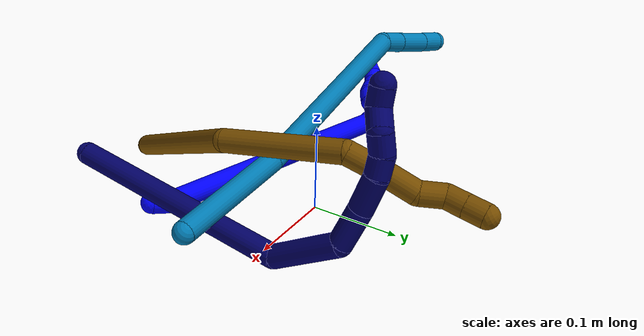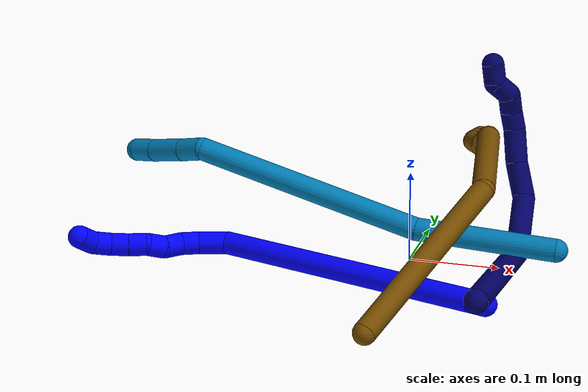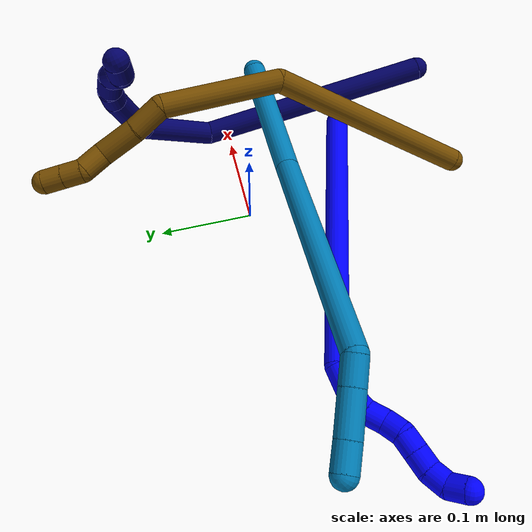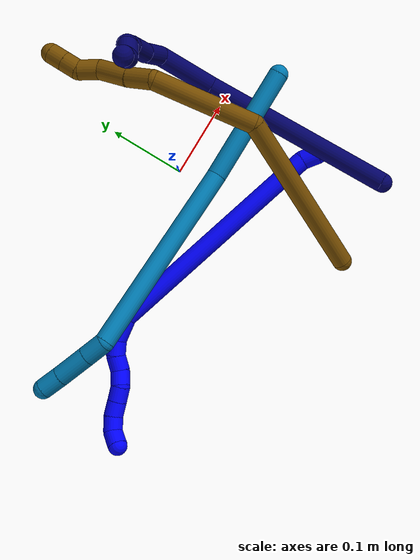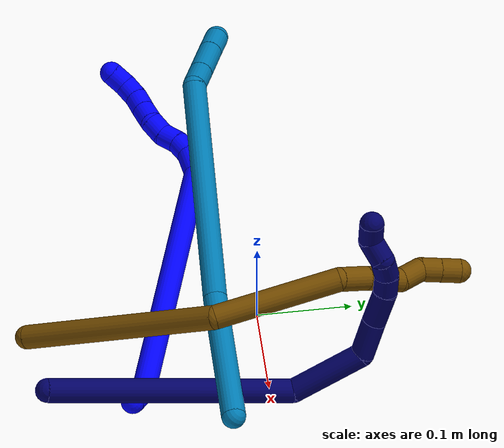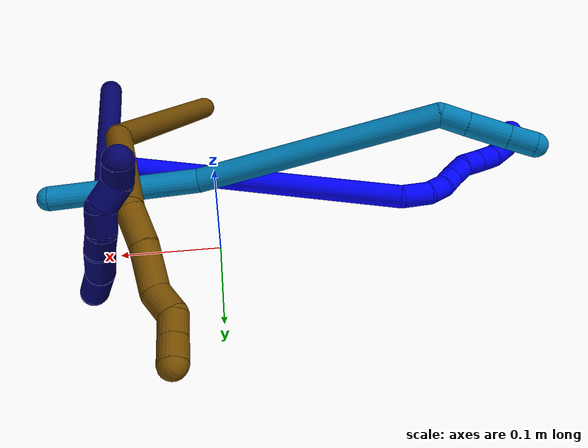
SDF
<sdf version="1.7">
 <world name="default">
  <model name="photoneo_s_sensor">
   <static>1</static>
   <pose>0 0 2 1.57079 1.57079 3.14159</pose>
   <link name="link">
    <inertial><mass>0.1</mass></inertial>
    <sensor name="sensor" type="depth">
     <update_rate>30</update_rate>
     <camera>
      <horizontal_fov>1.22</horizontal_fov>
      <image><width>1920</width><height>1200</height><format>B8G8R8</format></image>
      <clip><near>0.1</near><far>4</far></clip>
      <depth_camera><output>points</output></depth_camera>
     </camera>
     <plugin name="camera_plugin" filename="libgazebo_ros_depth_camera.so">
      <baseline>0.2</baseline>
      <alwaysOn>1</alwaysOn>
      <updateRate>0.0</updateRate>
      <cameraName>camera_ir</cameraName>
      <imageTopicName>/camera/color/image_raw</imageTopicName>
      <cameraInfoTopicName>/camera/color/camera_info</cameraInfoTopicName>
      <depthImageTopicName>/camera/depth/image_raw</depthImageTopicName>
      <depthImageCameraInfoTopicName>/camera/depth/camera_info</depthImageCameraInfoTopicName>
      <pointCloudTopicName>/camera/depth/points</pointCloudTopicName>
      <frameName>fr_optical</frameName>
      <pointCloudCutoff>0.1</pointCloudCutoff>
      <pointCloudCutoffMax>2.0</pointCloudCutoffMax>
      <distortionK1>0</distortionK1>
      <distortionK2>0</distortionK2>
      <distortionK3>0</distortionK3>
      <distortionT1>0</distortionT1>
      <distortionT2>0</distortionT2>
      <CxPrime>0</CxPrime>
      <Cx>0</Cx>
      <Cy>0</Cy>
      <focalLength>0</focalLength>
      <hackBaseline>0</hackBaseline>
     </plugin>
    </sensor>
   </link>
  </model>
  <model name="1">
   <static>0</static>
   <link name="1">
    <collision name="collision-cylinder-e_1_1_4">
     <pose>-0.007638 -0.00194 0.007285 0.260299 -0.791988 -0.109335</pose>
     <geometry><cylinder><radius>0.0125</radius><length>0.021464</length></cylinder></geometry>
     <surface>
      <friction><ode><mu>1.16</mu><mu2>1.16</mu2><slip1>0</slip1><slip2>0</slip2></ode></friction>
      <contact><ode><kp>1e+06</kp><kd>1</kd><max_vel>0</max_vel><min_depth>0.001</min_depth></ode></contact>
     </surface>
    </collision>
    <visual name="visual-cylinder-e_1_1_4">
     <pose>-0.007638 -0.00194 0.007285 0.260299 -0.791988 -0.109335</pose>
     <geometry><cylinder><radius>0.0125</radius><length>0.021464</length></cylinder></geometry>
     <material><ambient>0 0 1 1</ambient></material>
    </visual>
    <collision name="collision-cylinder-e_2_4_5">
     <pose>-0.13406 0.026539 0.105527 -0.322742 -0.891536 0.155261</pose>
     <geometry><cylinder><radius>0.0125</radius><length>0.305341</length></cylinder></geometry>
     <surface>
      <friction><ode><mu>1.16</mu><mu2>1.16</mu2><slip1>0</slip1><slip2>0</slip2></ode></friction>
      <contact><ode><kp>1e+06</kp><kd>1</kd><max_vel>0</max_vel><min_depth>0.001</min_depth></ode></contact>
     </surface>
    </collision>
    <visual name="visual-cylinder-e_2_4_5">
     <pose>-0.13406 0.026539 0.105527 -0.322742 -0.891536 0.155261</pose>
     <geometry><cylinder><radius>0.0125</radius><length>0.305341</length></cylinder></geometry>
     <material><ambient>0 0 1 1</ambient></material>
    </visual>
    <collision name="collision-cylinder-e_3_5_6">
     <pose>-0.261955 0.066151 0.205762 -0.780838 -0.609185 0.25733</pose>
     <geometry><cylinder><radius>0.0125</radius><length>0.031847</length></cylinder></geometry>
     <surface>
      <friction><ode><mu>1.16</mu><mu2>1.16</mu2><slip1>0</slip1><slip2>0</slip2></ode></friction>
      <contact><ode><kp>1e+06</kp><kd>1</kd><max_vel>0</max_vel><min_depth>0.001</min_depth></ode></contact>
     </surface>
    </collision>
    <visual name="visual-cylinder-e_3_5_6">
     <pose>-0.261955 0.066151 0.205762 -0.780838 -0.609185 0.25733</pose>
     <geometry><cylinder><radius>0.0125</radius><length>0.031847</length></cylinder></geometry>
     <material><ambient>0 0 1 1</ambient></material>
    </visual>
    <collision name="collision-cylinder-e_4_6_7">
     <pose>-0.275228 0.083756 0.219268 -1.10495 -0.416077 0.258829</pose>
     <geometry><cylinder><radius>0.0125</radius><length>0.02059</length></cylinder></geometry>
     <surface>
      <friction><ode><mu>1.16</mu><mu2>1.16</mu2><slip1>0</slip1><slip2>0</slip2></ode></friction>
      <contact><ode><kp>1e+06</kp><kd>1</kd><max_vel>0</max_vel><min_depth>0.001</min_depth></ode></contact>
     </surface>
    </collision>
    <visual name="visual-cylinder-e_4_6_7">
     <pose>-0.275228 0.083756 0.219268 -1.10495 -0.416077 0.258829</pose>
     <geometry><cylinder><radius>0.0125</radius><length>0.02059</length></cylinder></geometry>
     <material><ambient>0 0 1 1</ambient></material>
    </visual>
    <collision name="collision-cylinder-e_5_7_8">
     <pose>-0.280672 0.102002 0.226082 -1.31383 -0.125615 0.096923</pose>
     <geometry><cylinder><radius>0.0125</radius><length>0.020495</length></cylinder></geometry>
     <surface>
      <friction><ode><mu>1.16</mu><mu2>1.16</mu2><slip1>0</slip1><slip2>0</slip2></ode></friction>
      <contact><ode><kp>1e+06</kp><kd>1</kd><max_vel>0</max_vel><min_depth>0.001</min_depth></ode></contact>
     </surface>
    </collision>
    <visual name="visual-cylinder-e_5_7_8">
     <pose>-0.280672 0.102002 0.226082 -1.31383 -0.125615 0.096923</pose>
     <geometry><cylinder><radius>0.0125</radius><length>0.020495</length></cylinder></geometry>
     <material><ambient>0 0 1 1</ambient></material>
    </visual>
    <collision name="collision-cylinder-e_6_8_9">
     <pose>-0.286473 0.120682 0.229949 -1.42674 -0.467836 0.406719</pose>
     <geometry><cylinder><radius>0.0125</radius><length>0.020031</length></cylinder></geometry>
     <surface>
      <friction><ode><mu>1.16</mu><mu2>1.16</mu2><slip1>0</slip1><slip2>0</slip2></ode></friction>
      <contact><ode><kp>1e+06</kp><kd>1</kd><max_vel>0</max_vel><min_depth>0.001</min_depth></ode></contact>
     </surface>
    </collision>
    <visual name="visual-cylinder-e_6_8_9">
     <pose>-0.286473 0.120682 0.229949 -1.42674 -0.467836 0.406719</pose>
     <geometry><cylinder><radius>0.0125</radius><length>0.020031</length></cylinder></geometry>
     <material><ambient>0 0 1 1</ambient></material>
    </visual>
    <collision name="collision-cylinder-e_7_9_10">
     <pose>-0.29587 0.13672 0.236197 -0.966505 -0.509369 0.271545</pose>
     <geometry><cylinder><radius>0.0125</radius><length>0.02002</length></cylinder></geometry>
     <surface>
      <friction><ode><mu>1.16</mu><mu2>1.16</mu2><slip1>0</slip1><slip2>0</slip2></ode></friction>
      <contact><ode><kp>1e+06</kp><kd>1</kd><max_vel>0</max_vel><min_depth>0.001</min_depth></ode></contact>
     </surface>
    </collision>
    <visual name="visual-cylinder-e_7_9_10">
     <pose>-0.29587 0.13672 0.236197 -0.966505 -0.509369 0.271545</pose>
     <geometry><cylinder><radius>0.0125</radius><length>0.02002</length></cylinder></geometry>
     <material><ambient>0 0 1 1</ambient></material>
    </visual>
    <collision name="collision-cylinder-e_8_10_11">
     <pose>-0.306077 0.151041 0.245726 -1.00143 -0.561567 0.313065</pose>
     <geometry><cylinder><radius>0.0125</radius><length>0.020002</length></cylinder></geometry>
     <surface>
      <friction><ode><mu>1.16</mu><mu2>1.16</mu2><slip1>0</slip1><slip2>0</slip2></ode></friction>
      <contact><ode><kp>1e+06</kp><kd>1</kd><max_vel>0</max_vel><min_depth>0.001</min_depth></ode></contact>
     </surface>
    </collision>
    <visual name="visual-cylinder-e_8_10_11">
     <pose>-0.306077 0.151041 0.245726 -1.00143 -0.561567 0.313065</pose>
     <geometry><cylinder><radius>0.0125</radius><length>0.020002</length></cylinder></geometry>
     <material><ambient>0 0 1 1</ambient></material>
    </visual>
    <collision name="collision-cylinder-e_9_11_12">
     <pose>-0.315821 0.166876 0.252554 -1.31637 -0.456584 0.355501</pose>
     <geometry><cylinder><radius>0.0125</radius><length>0.020044</length></cylinder></geometry>
     <surface>
      <friction><ode><mu>1.16</mu><mu2>1.16</mu2><slip1>0</slip1><slip2>0</slip2></ode></friction>
      <contact><ode><kp>1e+06</kp><kd>1</kd><max_vel>0</max_vel><min_depth>0.001</min_depth></ode></contact>
     </surface>
    </collision>
    <visual name="visual-cylinder-e_9_11_12">
     <pose>-0.315821 0.166876 0.252554 -1.31637 -0.456584 0.355501</pose>
     <geometry><cylinder><radius>0.0125</radius><length>0.020044</length></cylinder></geometry>
     <material><ambient>0 0 1 1</ambient></material>
    </visual>
    <collision name="collision-cylinder-e_10_12_2">
     <pose>-0.323505 0.184671 0.251918 -1.87963 -0.329742 0.447817</pose>
     <geometry><cylinder><radius>0.0125</radius><length>0.020167</length></cylinder></geometry>
     <surface>
      <friction><ode><mu>1.16</mu><mu2>1.16</mu2><slip1>0</slip1><slip2>0</slip2></ode></friction>
      <contact><ode><kp>1e+06</kp><kd>1</kd><max_vel>0</max_vel><min_depth>0.001</min_depth></ode></contact>
     </surface>
    </collision>
    <visual name="visual-cylinder-e_10_12_2">
     <pose>-0.323505 0.184671 0.251918 -1.87963 -0.329742 0.447817</pose>
     <geometry><cylinder><radius>0.0125</radius><length>0.020167</length></cylinder></geometry>
     <material><ambient>0 0 1 1</ambient></material>
    </visual>
    <collision name="collision-sphere-2">
     <pose>-0.32677 0.19376 0.249018 0 -0 0</pose>
     <geometry><sphere><radius>0.0125</radius></sphere></geometry>
     <surface>
      <friction><ode><mu>1.16</mu><mu2>1.16</mu2><slip1>0</slip1><slip2>0</slip2></ode></friction>
      <contact><ode><kp>1e+06</kp><kd>1</kd><max_vel>0</max_vel><min_depth>0.001</min_depth></ode></contact>
     </surface>
    </collision>
    <visual name="visual-sphere-2">
     <pose>-0.32677 0.19376 0.249018 0 -0 0</pose>
     <geometry><sphere><radius>0.0125</radius></sphere></geometry>
     <material><ambient>0 0 1 1</ambient></material>
    </visual>
    <collision name="collision-sphere-12">
     <pose>-0.32024 0.175582 0.254818 0 -0 0</pose>
     <geometry><sphere><radius>0.0125</radius></sphere></geometry>
     <surface>
      <friction><ode><mu>1.16</mu><mu2>1.16</mu2><slip1>0</slip1><slip2>0</slip2></ode></friction>
      <contact><ode><kp>1e+06</kp><kd>1</kd><max_vel>0</max_vel><min_depth>0.001</min_depth></ode></contact>
     </surface>
    </collision>
    <visual name="visual-sphere-12">
     <pose>-0.32024 0.175582 0.254818 0 -0 0</pose>
     <geometry><sphere><radius>0.0125</radius></sphere></geometry>
     <material><ambient>0 0 1 1</ambient></material>
    </visual>
    <collision name="collision-sphere-11">
     <pose>-0.311403 0.15817 0.25029 0 -0 0</pose>
     <geometry><sphere><radius>0.0125</radius></sphere></geometry>
     <surface>
      <friction><ode><mu>1.16</mu><mu2>1.16</mu2><slip1>0</slip1><slip2>0</slip2></ode></friction>
      <contact><ode><kp>1e+06</kp><kd>1</kd><max_vel>0</max_vel><min_depth>0.001</min_depth></ode></contact>
     </surface>
    </collision>
    <visual name="visual-sphere-11">
     <pose>-0.311403 0.15817 0.25029 0 -0 0</pose>
     <geometry><sphere><radius>0.0125</radius></sphere></geometry>
     <material><ambient>0 0 1 1</ambient></material>
    </visual>
    <collision name="collision-sphere-10">
     <pose>-0.300752 0.143911 0.241163 0 -0 0</pose>
     <geometry><sphere><radius>0.0125</radius></sphere></geometry>
     <surface>
      <friction><ode><mu>1.16</mu><mu2>1.16</mu2><slip1>0</slip1><slip2>0</slip2></ode></friction>
      <contact><ode><kp>1e+06</kp><kd>1</kd><max_vel>0</max_vel><min_depth>0.001</min_depth></ode></contact>
     </surface>
    </collision>
    <visual name="visual-sphere-10">
     <pose>-0.300752 0.143911 0.241163 0 -0 0</pose>
     <geometry><sphere><radius>0.0125</radius></sphere></geometry>
     <material><ambient>0 0 1 1</ambient></material>
    </visual>
    <collision name="collision-sphere-9">
     <pose>-0.290989 0.129528 0.231232 0 -0 0</pose>
     <geometry><sphere><radius>0.0125</radius></sphere></geometry>
     <surface>
      <friction><ode><mu>1.16</mu><mu2>1.16</mu2><slip1>0</slip1><slip2>0</slip2></ode></friction>
      <contact><ode><kp>1e+06</kp><kd>1</kd><max_vel>0</max_vel><min_depth>0.001</min_depth></ode></contact>
     </surface>
    </collision>
    <visual name="visual-sphere-9">
     <pose>-0.290989 0.129528 0.231232 0 -0 0</pose>
     <geometry><sphere><radius>0.0125</radius></sphere></geometry>
     <material><ambient>0 0 1 1</ambient></material>
    </visual>
    <collision name="collision-sphere-4">
     <pose>-0.015277 -0.00388 0.014569 0 -0 0</pose>
     <geometry><sphere><radius>0.0125</radius></sphere></geometry>
     <surface>
      <friction><ode><mu>1.16</mu><mu2>1.16</mu2><slip1>0</slip1><slip2>0</slip2></ode></friction>
      <contact><ode><kp>1e+06</kp><kd>1</kd><max_vel>0</max_vel><min_depth>0.001</min_depth></ode></contact>
     </surface>
    </collision>
    <visual name="visual-sphere-4">
     <pose>-0.015277 -0.00388 0.014569 0 -0 0</pose>
     <geometry><sphere><radius>0.0125</radius></sphere></geometry>
     <material><ambient>0 0 1 1</ambient></material>
    </visual>
    <collision name="collision-sphere-1">
     <geometry><sphere><radius>0.0125</radius></sphere></geometry>
     <surface>
      <friction><ode><mu>1.16</mu><mu2>1.16</mu2><slip1>0</slip1><slip2>0</slip2></ode></friction>
      <contact><ode><kp>1e+06</kp><kd>1</kd><max_vel>0</max_vel><min_depth>0.001</min_depth></ode></contact>
     </surface>
    </collision>
    <visual name="visual-sphere-1">
     <geometry><sphere><radius>0.0125</radius></sphere></geometry>
     <material><ambient>0 0 1 1</ambient></material>
    </visual>
    <collision name="collision-sphere-8">
     <pose>-0.281956 0.111835 0.228665 0 -0 0</pose>
     <geometry><sphere><radius>0.0125</radius></sphere></geometry>
     <surface>
      <friction><ode><mu>1.16</mu><mu2>1.16</mu2><slip1>0</slip1><slip2>0</slip2></ode></friction>
      <contact><ode><kp>1e+06</kp><kd>1</kd><max_vel>0</max_vel><min_depth>0.001</min_depth></ode></contact>
     </surface>
    </collision>
    <visual name="visual-sphere-8">
     <pose>-0.281956 0.111835 0.228665 0 -0 0</pose>
     <geometry><sphere><radius>0.0125</radius></sphere></geometry>
     <material><ambient>0 0 1 1</ambient></material>
    </visual>
    <collision name="collision-sphere-5">
     <pose>-0.252844 0.056959 0.196486 0 -0 0</pose>
     <geometry><sphere><radius>0.0125</radius></sphere></geometry>
     <surface>
      <friction><ode><mu>1.16</mu><mu2>1.16</mu2><slip1>0</slip1><slip2>0</slip2></ode></friction>
      <contact><ode><kp>1e+06</kp><kd>1</kd><max_vel>0</max_vel><min_depth>0.001</min_depth></ode></contact>
     </surface>
    </collision>
    <visual name="visual-sphere-5">
     <pose>-0.252844 0.056959 0.196486 0 -0 0</pose>
     <geometry><sphere><radius>0.0125</radius></sphere></geometry>
     <material><ambient>0 0 1 1</ambient></material>
    </visual>
    <collision name="collision-sphere-6">
     <pose>-0.271067 0.075343 0.215038 0 -0 0</pose>
     <geometry><sphere><radius>0.0125</radius></sphere></geometry>
     <surface>
      <friction><ode><mu>1.16</mu><mu2>1.16</mu2><slip1>0</slip1><slip2>0</slip2></ode></friction>
      <contact><ode><kp>1e+06</kp><kd>1</kd><max_vel>0</max_vel><min_depth>0.001</min_depth></ode></contact>
     </surface>
    </collision>
    <visual name="visual-sphere-6">
     <pose>-0.271067 0.075343 0.215038 0 -0 0</pose>
     <geometry><sphere><radius>0.0125</radius></sphere></geometry>
     <material><ambient>0 0 1 1</ambient></material>
    </visual>
    <collision name="collision-sphere-7">
     <pose>-0.279389 0.092169 0.223498 0 -0 0</pose>
     <geometry><sphere><radius>0.0125</radius></sphere></geometry>
     <surface>
      <friction><ode><mu>1.16</mu><mu2>1.16</mu2><slip1>0</slip1><slip2>0</slip2></ode></friction>
      <contact><ode><kp>1e+06</kp><kd>1</kd><max_vel>0</max_vel><min_depth>0.001</min_depth></ode></contact>
     </surface>
    </collision>
    <visual name="visual-sphere-7">
     <pose>-0.279389 0.092169 0.223498 0 -0 0</pose>
     <geometry><sphere><radius>0.0125</radius></sphere></geometry>
     <material><ambient>0 0 1 1</ambient></material>
    </visual>
    <inertial>
     <pose>-0.182996 0.058457 0.144943 0 -0 0</pose>
     <mass>0.5</mass>
     <inertia>
      <ixx>0.001703</ixx>
      <ixy>0</ixy>
      <ixz>0</ixz>
      <iyy>0.002584</iyy>
      <iyz>0</iyz>
      <izz>0.001396</izz>
     </inertia>
    </inertial>
   </link>
   <pose>0.112448 -0.141437 0.01465 2.97616 0.628535 -0.589363</pose>
  </model>
  <model name="7">
   <static>0</static>
   <link name="7">
    <collision name="collision-cylinder-e_1_1_4">
     <pose>0.011906 0.125982 0.011617 -1.47885 0.093828 -0.085585</pose>
     <geometry><cylinder><radius>0.0125</radius><length>0.254151</length></cylinder></geometry>
     <surface>
      <friction><ode><mu>1.16</mu><mu2>1.16</mu2><slip1>0</slip1><slip2>0</slip2></ode></friction>
      <contact><ode><kp>1e+06</kp><kd>1</kd><max_vel>0</max_vel><min_depth>0.001</min_depth></ode></contact>
     </surface>
    </collision>
    <visual name="visual-cylinder-e_1_1_4">
     <pose>0.011906 0.125982 0.011617 -1.47885 0.093828 -0.085585</pose>
     <geometry><cylinder><radius>0.0125</radius><length>0.254151</length></cylinder></geometry>
     <material><ambient>0.003922 0 0.403922 1</ambient></material>
    </visual>
    <collision name="collision-cylinder-e_2_4_5">
     <pose>0.010397 0.283138 0.045274 -0.955364 -0.337899 0.176146</pose>
     <geometry><cylinder><radius>0.0125</radius><length>0.080933</length></cylinder></geometry>
     <surface>
      <friction><ode><mu>1.16</mu><mu2>1.16</mu2><slip1>0</slip1><slip2>0</slip2></ode></friction>
      <contact><ode><kp>1e+06</kp><kd>1</kd><max_vel>0</max_vel><min_depth>0.001</min_depth></ode></contact>
     </surface>
    </collision>
    <visual name="visual-cylinder-e_2_4_5">
     <pose>0.010397 0.283138 0.045274 -0.955364 -0.337899 0.176146</pose>
     <geometry><cylinder><radius>0.0125</radius><length>0.080933</length></cylinder></geometry>
     <material><ambient>0.003922 0 0.403922 1</ambient></material>
    </visual>
    <collision name="collision-cylinder-e_3_5_6">
     <pose>-0.018185 0.31817 0.080215 -0.290677 -0.84477 0.131379</pose>
     <geometry><cylinder><radius>0.0125</radius><length>0.040563</length></cylinder></geometry>
     <surface>
      <friction><ode><mu>1.16</mu><mu2>1.16</mu2><slip1>0</slip1><slip2>0</slip2></ode></friction>
      <contact><ode><kp>1e+06</kp><kd>1</kd><max_vel>0</max_vel><min_depth>0.001</min_depth></ode></contact>
     </surface>
    </collision>
    <visual name="visual-cylinder-e_3_5_6">
     <pose>-0.018185 0.31817 0.080215 -0.290677 -0.84477 0.131379</pose>
     <geometry><cylinder><radius>0.0125</radius><length>0.040563</length></cylinder></geometry>
     <material><ambient>0.003922 0 0.403922 1</ambient></material>
    </visual>
    <collision name="collision-cylinder-e_4_6_7">
     <pose>-0.045895 0.32463 0.107158 -0.183122 -0.720682 0.069165</pose>
     <geometry><cylinder><radius>0.0125</radius><length>0.038016</length></cylinder></geometry>
     <surface>
      <friction><ode><mu>1.16</mu><mu2>1.16</mu2><slip1>0</slip1><slip2>0</slip2></ode></friction>
      <contact><ode><kp>1e+06</kp><kd>1</kd><max_vel>0</max_vel><min_depth>0.001</min_depth></ode></contact>
     </surface>
    </collision>
    <visual name="visual-cylinder-e_4_6_7">
     <pose>-0.045895 0.32463 0.107158 -0.183122 -0.720682 0.069165</pose>
     <geometry><cylinder><radius>0.0125</radius><length>0.038016</length></cylinder></geometry>
     <material><ambient>0.003922 0 0.403922 1</ambient></material>
    </visual>
    <collision name="collision-cylinder-e_5_7_8">
     <pose>-0.066157 0.326561 0.12817 0.095819 -0.834077 -0.042476</pose>
     <geometry><cylinder><radius>0.0125</radius><length>0.020841</length></cylinder></geometry>
     <surface>
      <friction><ode><mu>1.16</mu><mu2>1.16</mu2><slip1>0</slip1><slip2>0</slip2></ode></friction>
      <contact><ode><kp>1e+06</kp><kd>1</kd><max_vel>0</max_vel><min_depth>0.001</min_depth></ode></contact>
     </surface>
    </collision>
    <visual name="visual-cylinder-e_5_7_8">
     <pose>-0.066157 0.326561 0.12817 0.095819 -0.834077 -0.042476</pose>
     <geometry><cylinder><radius>0.0125</radius><length>0.020841</length></cylinder></geometry>
     <material><ambient>0.003922 0 0.403922 1</ambient></material>
    </visual>
    <collision name="collision-cylinder-e_6_8_9">
     <pose>-0.080548 0.321916 0.142175 0.514304 -0.690227 -0.188519</pose>
     <geometry><cylinder><radius>0.0125</radius><length>0.02096</length></cylinder></geometry>
     <surface>
      <friction><ode><mu>1.16</mu><mu2>1.16</mu2><slip1>0</slip1><slip2>0</slip2></ode></friction>
      <contact><ode><kp>1e+06</kp><kd>1</kd><max_vel>0</max_vel><min_depth>0.001</min_depth></ode></contact>
     </surface>
    </collision>
    <visual name="visual-cylinder-e_6_8_9">
     <pose>-0.080548 0.321916 0.142175 0.514304 -0.690227 -0.188519</pose>
     <geometry><cylinder><radius>0.0125</radius><length>0.02096</length></cylinder></geometry>
     <material><ambient>0.003922 0 0.403922 1</ambient></material>
    </visual>
    <collision name="collision-cylinder-e_7_9_10">
     <pose>-0.09748 0.312561 0.150055 1.41516 -1.08286 -0.950167</pose>
     <geometry><cylinder><radius>0.0125</radius><length>0.023229</length></cylinder></geometry>
     <surface>
      <friction><ode><mu>1.16</mu><mu2>1.16</mu2><slip1>0</slip1><slip2>0</slip2></ode></friction>
      <contact><ode><kp>1e+06</kp><kd>1</kd><max_vel>0</max_vel><min_depth>0.001</min_depth></ode></contact>
     </surface>
    </collision>
    <visual name="visual-cylinder-e_7_9_10">
     <pose>-0.09748 0.312561 0.150055 1.41516 -1.08286 -0.950167</pose>
     <geometry><cylinder><radius>0.0125</radius><length>0.023229</length></cylinder></geometry>
     <material><ambient>0.003922 0 0.403922 1</ambient></material>
    </visual>
    <collision name="collision-cylinder-e_8_10_2">
     <pose>-0.115074 0.306021 0.158537 0.150954 -0.759405 -0.060337</pose>
     <geometry><cylinder><radius>0.0125</radius><length>0.021306</length></cylinder></geometry>
     <surface>
      <friction><ode><mu>1.16</mu><mu2>1.16</mu2><slip1>0</slip1><slip2>0</slip2></ode></friction>
      <contact><ode><kp>1e+06</kp><kd>1</kd><max_vel>0</max_vel><min_depth>0.001</min_depth></ode></contact>
     </surface>
    </collision>
    <visual name="visual-cylinder-e_8_10_2">
     <pose>-0.115074 0.306021 0.158537 0.150954 -0.759405 -0.060337</pose>
     <geometry><cylinder><radius>0.0125</radius><length>0.021306</length></cylinder></geometry>
     <material><ambient>0.003922 0 0.403922 1</ambient></material>
    </visual>
    <collision name="collision-sphere-2">
     <pose>-0.122408 0.304859 0.166175 0 -0 0</pose>
     <geometry><sphere><radius>0.0125</radius></sphere></geometry>
     <surface>
      <friction><ode><mu>1.16</mu><mu2>1.16</mu2><slip1>0</slip1><slip2>0</slip2></ode></friction>
      <contact><ode><kp>1e+06</kp><kd>1</kd><max_vel>0</max_vel><min_depth>0.001</min_depth></ode></contact>
     </surface>
    </collision>
    <visual name="visual-sphere-2">
     <pose>-0.122408 0.304859 0.166175 0 -0 0</pose>
     <geometry><sphere><radius>0.0125</radius></sphere></geometry>
     <material><ambient>0.003922 0 0.403922 1</ambient></material>
    </visual>
    <collision name="collision-sphere-10">
     <pose>-0.107739 0.307182 0.150899 0 -0 0</pose>
     <geometry><sphere><radius>0.0125</radius></sphere></geometry>
     <surface>
      <friction><ode><mu>1.16</mu><mu2>1.16</mu2><slip1>0</slip1><slip2>0</slip2></ode></friction>
      <contact><ode><kp>1e+06</kp><kd>1</kd><max_vel>0</max_vel><min_depth>0.001</min_depth></ode></contact>
     </surface>
    </collision>
    <visual name="visual-sphere-10">
     <pose>-0.107739 0.307182 0.150899 0 -0 0</pose>
     <geometry><sphere><radius>0.0125</radius></sphere></geometry>
     <material><ambient>0.003922 0 0.403922 1</ambient></material>
    </visual>
    <collision name="collision-sphere-9">
     <pose>-0.087221 0.317941 0.149211 0 -0 0</pose>
     <geometry><sphere><radius>0.0125</radius></sphere></geometry>
     <surface>
      <friction><ode><mu>1.16</mu><mu2>1.16</mu2><slip1>0</slip1><slip2>0</slip2></ode></friction>
      <contact><ode><kp>1e+06</kp><kd>1</kd><max_vel>0</max_vel><min_depth>0.001</min_depth></ode></contact>
     </surface>
    </collision>
    <visual name="visual-sphere-9">
     <pose>-0.087221 0.317941 0.149211 0 -0 0</pose>
     <geometry><sphere><radius>0.0125</radius></sphere></geometry>
     <material><ambient>0.003922 0 0.403922 1</ambient></material>
    </visual>
    <collision name="collision-sphere-4">
     <pose>0.023812 0.251964 0.023233 0 -0 0</pose>
     <geometry><sphere><radius>0.0125</radius></sphere></geometry>
     <surface>
      <friction><ode><mu>1.16</mu><mu2>1.16</mu2><slip1>0</slip1><slip2>0</slip2></ode></friction>
      <contact><ode><kp>1e+06</kp><kd>1</kd><max_vel>0</max_vel><min_depth>0.001</min_depth></ode></contact>
     </surface>
    </collision>
    <visual name="visual-sphere-4">
     <pose>0.023812 0.251964 0.023233 0 -0 0</pose>
     <geometry><sphere><radius>0.0125</radius></sphere></geometry>
     <material><ambient>0.003922 0 0.403922 1</ambient></material>
    </visual>
    <collision name="collision-sphere-1">
     <geometry><sphere><radius>0.0125</radius></sphere></geometry>
     <surface>
      <friction><ode><mu>1.16</mu><mu2>1.16</mu2><slip1>0</slip1><slip2>0</slip2></ode></friction>
      <contact><ode><kp>1e+06</kp><kd>1</kd><max_vel>0</max_vel><min_depth>0.001</min_depth></ode></contact>
     </surface>
    </collision>
    <visual name="visual-sphere-1">
     <geometry><sphere><radius>0.0125</radius></sphere></geometry>
     <material><ambient>0.003922 0 0.403922 1</ambient></material>
    </visual>
    <collision name="collision-sphere-8">
     <pose>-0.073875 0.325891 0.135139 0 -0 0</pose>
     <geometry><sphere><radius>0.0125</radius></sphere></geometry>
     <surface>
      <friction><ode><mu>1.16</mu><mu2>1.16</mu2><slip1>0</slip1><slip2>0</slip2></ode></friction>
      <contact><ode><kp>1e+06</kp><kd>1</kd><max_vel>0</max_vel><min_depth>0.001</min_depth></ode></contact>
     </surface>
    </collision>
    <visual name="visual-sphere-8">
     <pose>-0.073875 0.325891 0.135139 0 -0 0</pose>
     <geometry><sphere><radius>0.0125</radius></sphere></geometry>
     <material><ambient>0.003922 0 0.403922 1</ambient></material>
    </visual>
    <collision name="collision-sphere-5">
     <pose>-0.003018 0.314311 0.067315 0 -0 0</pose>
     <geometry><sphere><radius>0.0125</radius></sphere></geometry>
     <surface>
      <friction><ode><mu>1.16</mu><mu2>1.16</mu2><slip1>0</slip1><slip2>0</slip2></ode></friction>
      <contact><ode><kp>1e+06</kp><kd>1</kd><max_vel>0</max_vel><min_depth>0.001</min_depth></ode></contact>
     </surface>
    </collision>
    <visual name="visual-sphere-5">
     <pose>-0.003018 0.314311 0.067315 0 -0 0</pose>
     <geometry><sphere><radius>0.0125</radius></sphere></geometry>
     <material><ambient>0.003922 0 0.403922 1</ambient></material>
    </visual>
    <collision name="collision-sphere-6">
     <pose>-0.033352 0.322029 0.093115 0 -0 0</pose>
     <geometry><sphere><radius>0.0125</radius></sphere></geometry>
     <surface>
      <friction><ode><mu>1.16</mu><mu2>1.16</mu2><slip1>0</slip1><slip2>0</slip2></ode></friction>
      <contact><ode><kp>1e+06</kp><kd>1</kd><max_vel>0</max_vel><min_depth>0.001</min_depth></ode></contact>
     </surface>
    </collision>
    <visual name="visual-sphere-6">
     <pose>-0.033352 0.322029 0.093115 0 -0 0</pose>
     <geometry><sphere><radius>0.0125</radius></sphere></geometry>
     <material><ambient>0.003922 0 0.403922 1</ambient></material>
    </visual>
    <collision name="collision-sphere-7">
     <pose>-0.058439 0.327231 0.121201 0 -0 0</pose>
     <geometry><sphere><radius>0.0125</radius></sphere></geometry>
     <surface>
      <friction><ode><mu>1.16</mu><mu2>1.16</mu2><slip1>0</slip1><slip2>0</slip2></ode></friction>
      <contact><ode><kp>1e+06</kp><kd>1</kd><max_vel>0</max_vel><min_depth>0.001</min_depth></ode></contact>
     </surface>
    </collision>
    <visual name="visual-sphere-7">
     <pose>-0.058439 0.327231 0.121201 0 -0 0</pose>
     <geometry><sphere><radius>0.0125</radius></sphere></geometry>
     <material><ambient>0.003922 0 0.403922 1</ambient></material>
    </visual>
    <inertial>
     <pose>-0.012797 0.21503 0.052917 0 -0 0</pose>
     <mass>0.5</mass>
     <inertia>
      <ixx>0.001305</ixx>
      <ixy>0</ixy>
      <ixz>0</ixz>
      <iyy>0.0001</iyy>
      <iyz>0</iyz>
      <izz>-0.001489</izz>
     </inertia>
    </inertial>
   </link>
   <pose>0.119141 -0.227794 0.053181 -0.22757 0.60725 0.013335</pose>
  </model>
  <model name="9">
   <static>0</static>
   <link name="9">
    <collision name="collision-cylinder-e_1_1_4">
     <pose>-0.074371 -0.014388 -0.000593 1.61199 -1.37954 -1.42014</pose>
     <geometry><cylinder><radius>0.0125</radius><length>0.151504</length></cylinder></geometry>
     <surface>
      <friction><ode><mu>1.16</mu><mu2>1.16</mu2><slip1>0</slip1><slip2>0</slip2></ode></friction>
      <contact><ode><kp>1e+06</kp><kd>1</kd><max_vel>0</max_vel><min_depth>0.001</min_depth></ode></contact>
     </surface>
    </collision>
    <visual name="visual-cylinder-e_1_1_4">
     <pose>-0.074371 -0.014388 -0.000593 1.61199 -1.37954 -1.42014</pose>
     <geometry><cylinder><radius>0.0125</radius><length>0.151504</length></cylinder></geometry>
     <material><ambient>0 0.490196 0.709804 1</ambient></material>
    </visual>
    <collision name="collision-cylinder-e_2_4_5">
     <pose>-0.267336 -0.06354 0.021417 0.994297 -1.23444 -0.735187</pose>
     <geometry><cylinder><radius>0.0125</radius><length>0.25127</length></cylinder></geometry>
     <surface>
      <friction><ode><mu>1.16</mu><mu2>1.16</mu2><slip1>0</slip1><slip2>0</slip2></ode></friction>
      <contact><ode><kp>1e+06</kp><kd>1</kd><max_vel>0</max_vel><min_depth>0.001</min_depth></ode></contact>
     </surface>
    </collision>
    <visual name="visual-cylinder-e_2_4_5">
     <pose>-0.267336 -0.06354 0.021417 0.994297 -1.23444 -0.735187</pose>
     <geometry><cylinder><radius>0.0125</radius><length>0.25127</length></cylinder></geometry>
     <material><ambient>0 0.490196 0.709804 1</ambient></material>
    </visual>
    <collision name="collision-cylinder-e_3_5_6">
     <pose>-0.399627 -0.094543 0.043477 -1.71409 -1.30015 1.44094</pose>
     <geometry><cylinder><radius>0.0125</radius><length>0.028427</length></cylinder></geometry>
     <surface>
      <friction><ode><mu>1.16</mu><mu2>1.16</mu2><slip1>0</slip1><slip2>0</slip2></ode></friction>
      <contact><ode><kp>1e+06</kp><kd>1</kd><max_vel>0</max_vel><min_depth>0.001</min_depth></ode></contact>
     </surface>
    </collision>
    <visual name="visual-cylinder-e_3_5_6">
     <pose>-0.399627 -0.094543 0.043477 -1.71409 -1.30015 1.44094</pose>
     <geometry><cylinder><radius>0.0125</radius><length>0.028427</length></cylinder></geometry>
     <material><ambient>0 0.490196 0.709804 1</ambient></material>
    </visual>
    <collision name="collision-cylinder-e_4_6_7">
     <pose>-0.43358 -0.085442 0.04263 -1.62765 -1.31264 1.36801</pose>
     <geometry><cylinder><radius>0.0125</radius><length>0.041903</length></cylinder></geometry>
     <surface>
      <friction><ode><mu>1.16</mu><mu2>1.16</mu2><slip1>0</slip1><slip2>0</slip2></ode></friction>
      <contact><ode><kp>1e+06</kp><kd>1</kd><max_vel>0</max_vel><min_depth>0.001</min_depth></ode></contact>
     </surface>
    </collision>
    <visual name="visual-cylinder-e_4_6_7">
     <pose>-0.43358 -0.085442 0.04263 -1.62765 -1.31264 1.36801</pose>
     <geometry><cylinder><radius>0.0125</radius><length>0.041903</length></cylinder></geometry>
     <material><ambient>0 0.490196 0.709804 1</ambient></material>
    </visual>
    <collision name="collision-cylinder-e_5_7_2">
     <pose>-0.466838 -0.076685 0.042731 -1.45283 -1.31207 1.19972</pose>
     <geometry><cylinder><radius>0.0125</radius><length>0.026897</length></cylinder></geometry>
     <surface>
      <friction><ode><mu>1.16</mu><mu2>1.16</mu2><slip1>0</slip1><slip2>0</slip2></ode></friction>
      <contact><ode><kp>1e+06</kp><kd>1</kd><max_vel>0</max_vel><min_depth>0.001</min_depth></ode></contact>
     </surface>
    </collision>
    <visual name="visual-cylinder-e_5_7_2">
     <pose>-0.466838 -0.076685 0.042731 -1.45283 -1.31207 1.19972</pose>
     <geometry><cylinder><radius>0.0125</radius><length>0.026897</length></cylinder></geometry>
     <material><ambient>0 0.490196 0.709804 1</ambient></material>
    </visual>
    <collision name="collision-sphere-2">
     <pose>-0.479838 -0.073268 0.043136 0 -0 0</pose>
     <geometry><sphere><radius>0.0125</radius></sphere></geometry>
     <surface>
      <friction><ode><mu>1.16</mu><mu2>1.16</mu2><slip1>0</slip1><slip2>0</slip2></ode></friction>
      <contact><ode><kp>1e+06</kp><kd>1</kd><max_vel>0</max_vel><min_depth>0.001</min_depth></ode></contact>
     </surface>
    </collision>
    <visual name="visual-sphere-2">
     <pose>-0.479838 -0.073268 0.043136 0 -0 0</pose>
     <geometry><sphere><radius>0.0125</radius></sphere></geometry>
     <material><ambient>0 0.490196 0.709804 1</ambient></material>
    </visual>
    <collision name="collision-sphere-7">
     <pose>-0.453837 -0.080102 0.042326 0 -0 0</pose>
     <geometry><sphere><radius>0.0125</radius></sphere></geometry>
     <surface>
      <friction><ode><mu>1.16</mu><mu2>1.16</mu2><slip1>0</slip1><slip2>0</slip2></ode></friction>
      <contact><ode><kp>1e+06</kp><kd>1</kd><max_vel>0</max_vel><min_depth>0.001</min_depth></ode></contact>
     </surface>
    </collision>
    <visual name="visual-sphere-7">
     <pose>-0.453837 -0.080102 0.042326 0 -0 0</pose>
     <geometry><sphere><radius>0.0125</radius></sphere></geometry>
     <material><ambient>0 0.490196 0.709804 1</ambient></material>
    </visual>
    <collision name="collision-sphere-6">
     <pose>-0.413323 -0.090782 0.042934 0 -0 0</pose>
     <geometry><sphere><radius>0.0125</radius></sphere></geometry>
     <surface>
      <friction><ode><mu>1.16</mu><mu2>1.16</mu2><slip1>0</slip1><slip2>0</slip2></ode></friction>
      <contact><ode><kp>1e+06</kp><kd>1</kd><max_vel>0</max_vel><min_depth>0.001</min_depth></ode></contact>
     </surface>
    </collision>
    <visual name="visual-sphere-6">
     <pose>-0.413323 -0.090782 0.042934 0 -0 0</pose>
     <geometry><sphere><radius>0.0125</radius></sphere></geometry>
     <material><ambient>0 0.490196 0.709804 1</ambient></material>
    </visual>
    <collision name="collision-sphere-5">
     <pose>-0.385931 -0.098304 0.04402 0 -0 0</pose>
     <geometry><sphere><radius>0.0125</radius></sphere></geometry>
     <surface>
      <friction><ode><mu>1.16</mu><mu2>1.16</mu2><slip1>0</slip1><slip2>0</slip2></ode></friction>
      <contact><ode><kp>1e+06</kp><kd>1</kd><max_vel>0</max_vel><min_depth>0.001</min_depth></ode></contact>
     </surface>
    </collision>
    <visual name="visual-sphere-5">
     <pose>-0.385931 -0.098304 0.04402 0 -0 0</pose>
     <geometry><sphere><radius>0.0125</radius></sphere></geometry>
     <material><ambient>0 0.490196 0.709804 1</ambient></material>
    </visual>
    <collision name="collision-sphere-1">
     <geometry><sphere><radius>0.0125</radius></sphere></geometry>
     <surface>
      <friction><ode><mu>1.16</mu><mu2>1.16</mu2><slip1>0</slip1><slip2>0</slip2></ode></friction>
      <contact><ode><kp>1e+06</kp><kd>1</kd><max_vel>0</max_vel><min_depth>0.001</min_depth></ode></contact>
     </surface>
    </collision>
    <visual name="visual-sphere-1">
     <geometry><sphere><radius>0.0125</radius></sphere></geometry>
     <material><ambient>0 0.490196 0.709804 1</ambient></material>
    </visual>
    <collision name="collision-sphere-4">
     <pose>-0.148742 -0.028776 -0.001186 0 -0 0</pose>
     <geometry><sphere><radius>0.0125</radius></sphere></geometry>
     <surface>
      <friction><ode><mu>1.16</mu><mu2>1.16</mu2><slip1>0</slip1><slip2>0</slip2></ode></friction>
      <contact><ode><kp>1e+06</kp><kd>1</kd><max_vel>0</max_vel><min_depth>0.001</min_depth></ode></contact>
     </surface>
    </collision>
    <visual name="visual-sphere-4">
     <pose>-0.148742 -0.028776 -0.001186 0 -0 0</pose>
     <geometry><sphere><radius>0.0125</radius></sphere></geometry>
     <material><ambient>0 0.490196 0.709804 1</ambient></material>
    </visual>
    <inertial>
     <pose>-0.241051 -0.052952 0.018926 0 -0 0</pose>
     <mass>0.5</mass>
     <inertia>
      <ixx>-4.9e-05</ixx>
      <ixy>0</ixy>
      <ixz>0</ixz>
      <iyy>0.00119</iyy>
      <iyz>0</iyz>
      <izz>0.001985</izz>
     </inertia>
    </inertial>
   </link>
   <pose>0.16841 -0.045083 0.044058 -0.614775 -0.043117 -0.157136</pose>
  </model>
  <model name="12">
   <static>0</static>
   <link name="12">
    <collision name="collision-cylinder-e_1_1_4">
     <pose>0.0147 0.072428 0.084113 -0.710888 0.131664 -0.048936</pose>
     <geometry><cylinder><radius>0.0125</radius><length>0.223937</length></cylinder></geometry>
     <surface>
      <friction><ode><mu>1.16</mu><mu2>1.16</mu2><slip1>0</slip1><slip2>0</slip2></ode></friction>
      <contact><ode><kp>1e+06</kp><kd>1</kd><max_vel>0</max_vel><min_depth>0.001</min_depth></ode></contact>
     </surface>
    </collision>
    <visual name="visual-cylinder-e_1_1_4">
     <pose>0.0147 0.072428 0.084113 -0.710888 0.131664 -0.048936</pose>
     <geometry><cylinder><radius>0.0125</radius><length>0.223937</length></cylinder></geometry>
     <material><ambient>0.466667 0.301961 0 1</ambient></material>
    </visual>
    <collision name="collision-cylinder-e_2_4_5">
     <pose>0.005424 0.165864 0.225791 -0.349935 -0.372946 0.066678</pose>
     <geometry><cylinder><radius>0.0125</radius><length>0.131603</length></cylinder></geometry>
     <surface>
      <friction><ode><mu>1.16</mu><mu2>1.16</mu2><slip1>0</slip1><slip2>0</slip2></ode></friction>
      <contact><ode><kp>1e+06</kp><kd>1</kd><max_vel>0</max_vel><min_depth>0.001</min_depth></ode></contact>
     </surface>
    </collision>
    <visual name="visual-cylinder-e_2_4_5">
     <pose>0.005424 0.165864 0.225791 -0.349935 -0.372946 0.066678</pose>
     <geometry><cylinder><radius>0.0125</radius><length>0.131603</length></cylinder></geometry>
     <material><ambient>0.466667 0.301961 0 1</ambient></material>
    </visual>
    <collision name="collision-cylinder-e_3_5_6">
     <pose>-0.032885 0.190112 0.292598 -0.337106 -0.971346 0.179163</pose>
     <geometry><cylinder><radius>0.0125</radius><length>0.034721</length></cylinder></geometry>
     <surface>
      <friction><ode><mu>1.16</mu><mu2>1.16</mu2><slip1>0</slip1><slip2>0</slip2></ode></friction>
      <contact><ode><kp>1e+06</kp><kd>1</kd><max_vel>0</max_vel><min_depth>0.001</min_depth></ode></contact>
     </surface>
    </collision>
    <visual name="visual-cylinder-e_3_5_6">
     <pose>-0.032885 0.190112 0.292598 -0.337106 -0.971346 0.179163</pose>
     <geometry><cylinder><radius>0.0125</radius><length>0.034721</length></cylinder></geometry>
     <material><ambient>0.466667 0.301961 0 1</ambient></material>
    </visual>
    <collision name="collision-cylinder-e_4_6_7">
     <pose>-0.063761 0.199837 0.312747 -0.53656 -0.9165 0.269564</pose>
     <geometry><cylinder><radius>0.0125</radius><length>0.041695</length></cylinder></geometry>
     <surface>
      <friction><ode><mu>1.16</mu><mu2>1.16</mu2><slip1>0</slip1><slip2>0</slip2></ode></friction>
      <contact><ode><kp>1e+06</kp><kd>1</kd><max_vel>0</max_vel><min_depth>0.001</min_depth></ode></contact>
     </surface>
    </collision>
    <visual name="visual-cylinder-e_4_6_7">
     <pose>-0.063761 0.199837 0.312747 -0.53656 -0.9165 0.269564</pose>
     <geometry><cylinder><radius>0.0125</radius><length>0.041695</length></cylinder></geometry>
     <material><ambient>0.466667 0.301961 0 1</ambient></material>
    </visual>
    <collision name="collision-cylinder-e_5_7_8">
     <pose>-0.08875 0.205829 0.334089 0.047337 -0.679793 -0.016742</pose>
     <geometry><cylinder><radius>0.0125</radius><length>0.026873</length></cylinder></geometry>
     <surface>
      <friction><ode><mu>1.16</mu><mu2>1.16</mu2><slip1>0</slip1><slip2>0</slip2></ode></friction>
      <contact><ode><kp>1e+06</kp><kd>1</kd><max_vel>0</max_vel><min_depth>0.001</min_depth></ode></contact>
     </surface>
    </collision>
    <visual name="visual-cylinder-e_5_7_8">
     <pose>-0.08875 0.205829 0.334089 0.047337 -0.679793 -0.016742</pose>
     <geometry><cylinder><radius>0.0125</radius><length>0.026873</length></cylinder></geometry>
     <material><ambient>0.466667 0.301961 0 1</ambient></material>
    </visual>
    <collision name="collision-cylinder-e_6_8_9">
     <pose>-0.102928 0.210599 0.351329 -0.65874 -0.587807 0.206184</pose>
     <geometry><cylinder><radius>0.0125</radius><length>0.020672</length></cylinder></geometry>
     <surface>
      <friction><ode><mu>1.16</mu><mu2>1.16</mu2><slip1>0</slip1><slip2>0</slip2></ode></friction>
      <contact><ode><kp>1e+06</kp><kd>1</kd><max_vel>0</max_vel><min_depth>0.001</min_depth></ode></contact>
     </surface>
    </collision>
    <visual name="visual-cylinder-e_6_8_9">
     <pose>-0.102928 0.210599 0.351329 -0.65874 -0.587807 0.206184</pose>
     <geometry><cylinder><radius>0.0125</radius><length>0.020672</length></cylinder></geometry>
     <material><ambient>0.466667 0.301961 0 1</ambient></material>
    </visual>
    <collision name="collision-cylinder-e_7_9_2">
     <pose>-0.114333 0.22108 0.364888 -0.657326 -0.586594 0.205264</pose>
     <geometry><cylinder><radius>0.0125</radius><length>0.0205</length></cylinder></geometry>
     <surface>
      <friction><ode><mu>1.16</mu><mu2>1.16</mu2><slip1>0</slip1><slip2>0</slip2></ode></friction>
      <contact><ode><kp>1e+06</kp><kd>1</kd><max_vel>0</max_vel><min_depth>0.001</min_depth></ode></contact>
     </surface>
    </collision>
    <visual name="visual-cylinder-e_7_9_2">
     <pose>-0.114333 0.22108 0.364888 -0.657326 -0.586594 0.205264</pose>
     <geometry><cylinder><radius>0.0125</radius><length>0.0205</length></cylinder></geometry>
     <material><ambient>0.466667 0.301961 0 1</ambient></material>
    </visual>
    <collision name="collision-sphere-2">
     <pose>-0.120007 0.226296 0.371645 0 -0 0</pose>
     <geometry><sphere><radius>0.0125</radius></sphere></geometry>
     <surface>
      <friction><ode><mu>1.16</mu><mu2>1.16</mu2><slip1>0</slip1><slip2>0</slip2></ode></friction>
      <contact><ode><kp>1e+06</kp><kd>1</kd><max_vel>0</max_vel><min_depth>0.001</min_depth></ode></contact>
     </surface>
    </collision>
    <visual name="visual-sphere-2">
     <pose>-0.120007 0.226296 0.371645 0 -0 0</pose>
     <geometry><sphere><radius>0.0125</radius></sphere></geometry>
     <material><ambient>0.466667 0.301961 0 1</ambient></material>
    </visual>
    <collision name="collision-sphere-9">
     <pose>-0.10866 0.215864 0.35813 0 -0 0</pose>
     <geometry><sphere><radius>0.0125</radius></sphere></geometry>
     <surface>
      <friction><ode><mu>1.16</mu><mu2>1.16</mu2><slip1>0</slip1><slip2>0</slip2></ode></friction>
      <contact><ode><kp>1e+06</kp><kd>1</kd><max_vel>0</max_vel><min_depth>0.001</min_depth></ode></contact>
     </surface>
    </collision>
    <visual name="visual-sphere-9">
     <pose>-0.10866 0.215864 0.35813 0 -0 0</pose>
     <geometry><sphere><radius>0.0125</radius></sphere></geometry>
     <material><ambient>0.466667 0.301961 0 1</ambient></material>
    </visual>
    <collision name="collision-sphere-4">
     <pose>0.029399 0.144855 0.168227 0 -0 0</pose>
     <geometry><sphere><radius>0.0125</radius></sphere></geometry>
     <surface>
      <friction><ode><mu>1.16</mu><mu2>1.16</mu2><slip1>0</slip1><slip2>0</slip2></ode></friction>
      <contact><ode><kp>1e+06</kp><kd>1</kd><max_vel>0</max_vel><min_depth>0.001</min_depth></ode></contact>
     </surface>
    </collision>
    <visual name="visual-sphere-4">
     <pose>0.029399 0.144855 0.168227 0 -0 0</pose>
     <geometry><sphere><radius>0.0125</radius></sphere></geometry>
     <material><ambient>0.466667 0.301961 0 1</ambient></material>
    </visual>
    <collision name="collision-sphere-1">
     <geometry><sphere><radius>0.0125</radius></sphere></geometry>
     <surface>
      <friction><ode><mu>1.16</mu><mu2>1.16</mu2><slip1>0</slip1><slip2>0</slip2></ode></friction>
      <contact><ode><kp>1e+06</kp><kd>1</kd><max_vel>0</max_vel><min_depth>0.001</min_depth></ode></contact>
     </surface>
    </collision>
    <visual name="visual-sphere-1">
     <geometry><sphere><radius>0.0125</radius></sphere></geometry>
     <material><ambient>0.466667 0.301961 0 1</ambient></material>
    </visual>
    <collision name="collision-sphere-8">
     <pose>-0.097196 0.205334 0.344527 0 -0 0</pose>
     <geometry><sphere><radius>0.0125</radius></sphere></geometry>
     <surface>
      <friction><ode><mu>1.16</mu><mu2>1.16</mu2><slip1>0</slip1><slip2>0</slip2></ode></friction>
      <contact><ode><kp>1e+06</kp><kd>1</kd><max_vel>0</max_vel><min_depth>0.001</min_depth></ode></contact>
     </surface>
    </collision>
    <visual name="visual-sphere-8">
     <pose>-0.097196 0.205334 0.344527 0 -0 0</pose>
     <geometry><sphere><radius>0.0125</radius></sphere></geometry>
     <material><ambient>0.466667 0.301961 0 1</ambient></material>
    </visual>
    <collision name="collision-sphere-5">
     <pose>-0.018552 0.186872 0.283355 0 -0 0</pose>
     <geometry><sphere><radius>0.0125</radius></sphere></geometry>
     <surface>
      <friction><ode><mu>1.16</mu><mu2>1.16</mu2><slip1>0</slip1><slip2>0</slip2></ode></friction>
      <contact><ode><kp>1e+06</kp><kd>1</kd><max_vel>0</max_vel><min_depth>0.001</min_depth></ode></contact>
     </surface>
    </collision>
    <visual name="visual-sphere-5">
     <pose>-0.018552 0.186872 0.283355 0 -0 0</pose>
     <geometry><sphere><radius>0.0125</radius></sphere></geometry>
     <material><ambient>0.466667 0.301961 0 1</ambient></material>
    </visual>
    <collision name="collision-sphere-6">
     <pose>-0.047219 0.193351 0.301842 0 -0 0</pose>
     <geometry><sphere><radius>0.0125</radius></sphere></geometry>
     <surface>
      <friction><ode><mu>1.16</mu><mu2>1.16</mu2><slip1>0</slip1><slip2>0</slip2></ode></friction>
      <contact><ode><kp>1e+06</kp><kd>1</kd><max_vel>0</max_vel><min_depth>0.001</min_depth></ode></contact>
     </surface>
    </collision>
    <visual name="visual-sphere-6">
     <pose>-0.047219 0.193351 0.301842 0 -0 0</pose>
     <geometry><sphere><radius>0.0125</radius></sphere></geometry>
     <material><ambient>0.466667 0.301961 0 1</ambient></material>
    </visual>
    <collision name="collision-sphere-7">
     <pose>-0.080303 0.206323 0.323651 0 -0 0</pose>
     <geometry><sphere><radius>0.0125</radius></sphere></geometry>
     <surface>
      <friction><ode><mu>1.16</mu><mu2>1.16</mu2><slip1>0</slip1><slip2>0</slip2></ode></friction>
      <contact><ode><kp>1e+06</kp><kd>1</kd><max_vel>0</max_vel><min_depth>0.001</min_depth></ode></contact>
     </surface>
    </collision>
    <visual name="visual-sphere-7">
     <pose>-0.080303 0.206323 0.323651 0 -0 0</pose>
     <geometry><sphere><radius>0.0125</radius></sphere></geometry>
     <material><ambient>0.466667 0.301961 0 1</ambient></material>
    </visual>
    <inertial>
     <pose>-0.013303 0.134795 0.190941 0 -0 0</pose>
     <mass>0.5</mass>
     <inertia>
      <ixx>0.001087</ixx>
      <ixy>0</ixy>
      <ixz>0</ixz>
      <iyy>0.000907</iyy>
      <iyz>0</iyz>
      <izz>-0.000688</izz>
     </inertia>
    </inertial>
   </link>
   <pose>0.011037 -0.240914 0.012541 -0.253725 -0.97488 -0.854332</pose>
  </model>
 </world>
</sdf>
